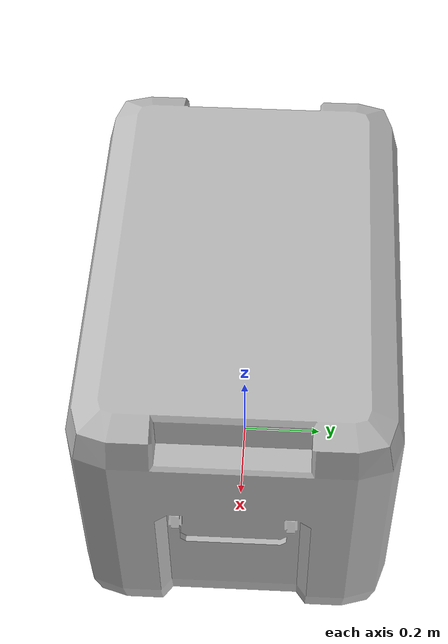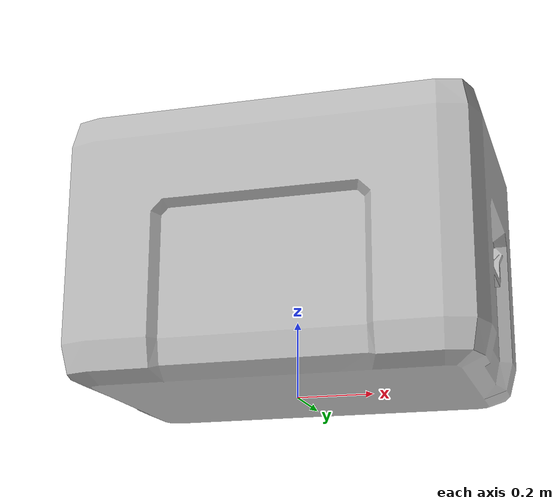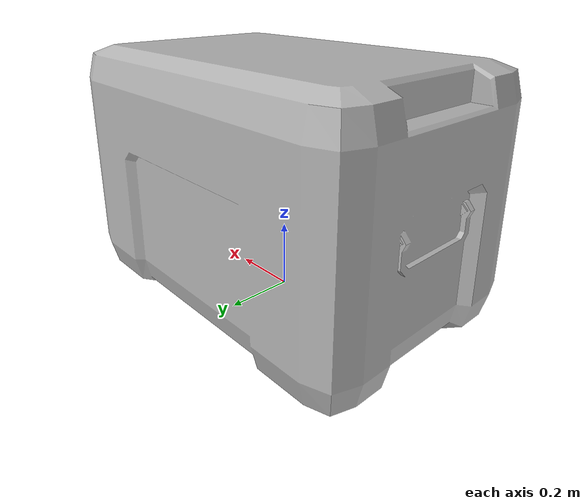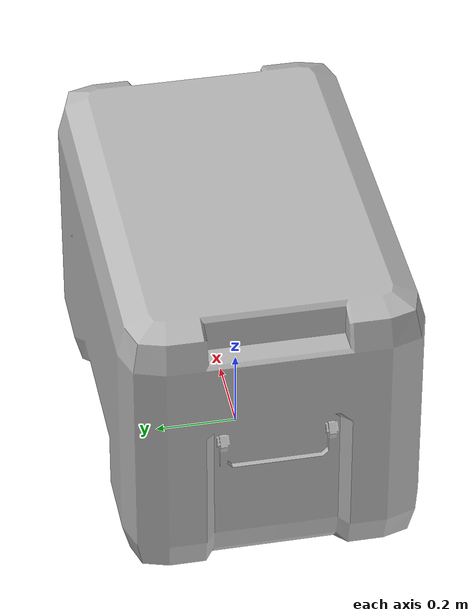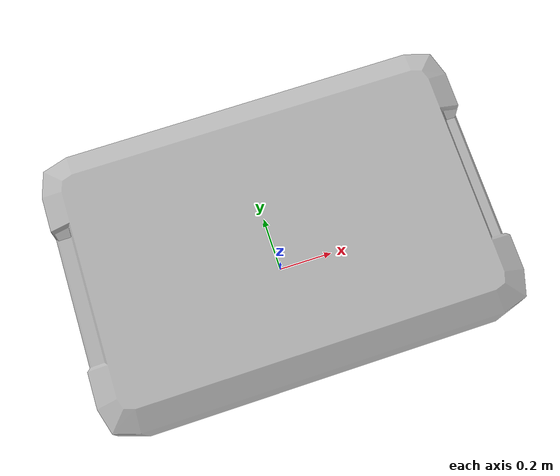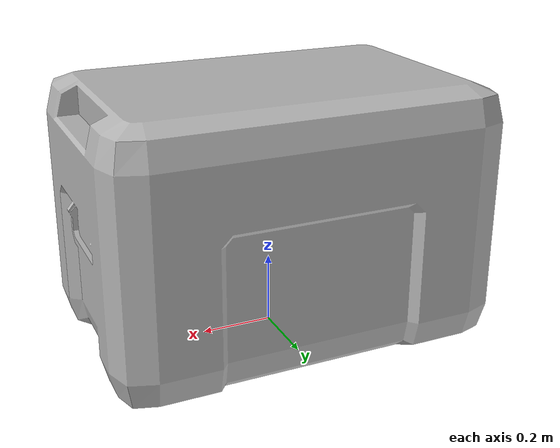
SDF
<?xml version="1.0" ?>
<sdf version="1.5">
  <model name="mars_crate_long">
    <static>true</static>
    <link name="link">
      <collision name="collision">
        <pose>0 0 0.36 0 0 0</pose>
        <geometry>
          <box>
            <size>1.08 0.72 0.72</size>
          </box>
        </geometry>
      </collision>
      <visual name="visual">
        <geometry>
          <mesh>
            <uri>model://mars_crate_long/meshes/crate_long.obj</uri>
            <scale>0.03 0.03 0.03</scale>
          </mesh>
        </geometry>
      </visual>
    </link>
  </model>
</sdf>
